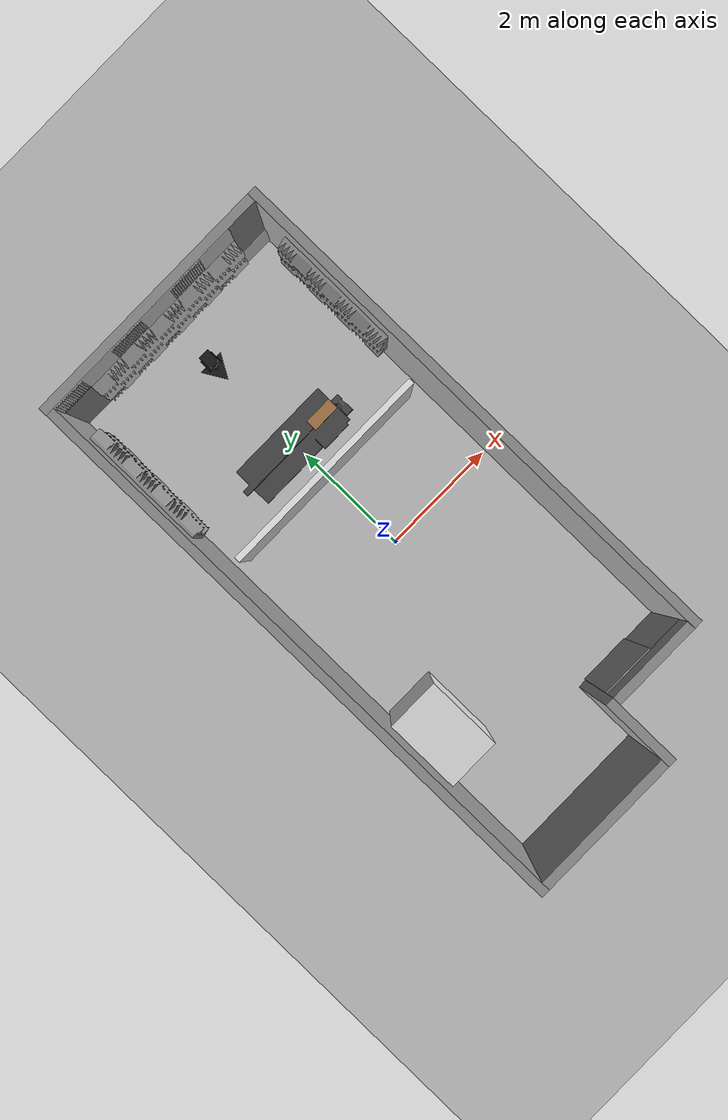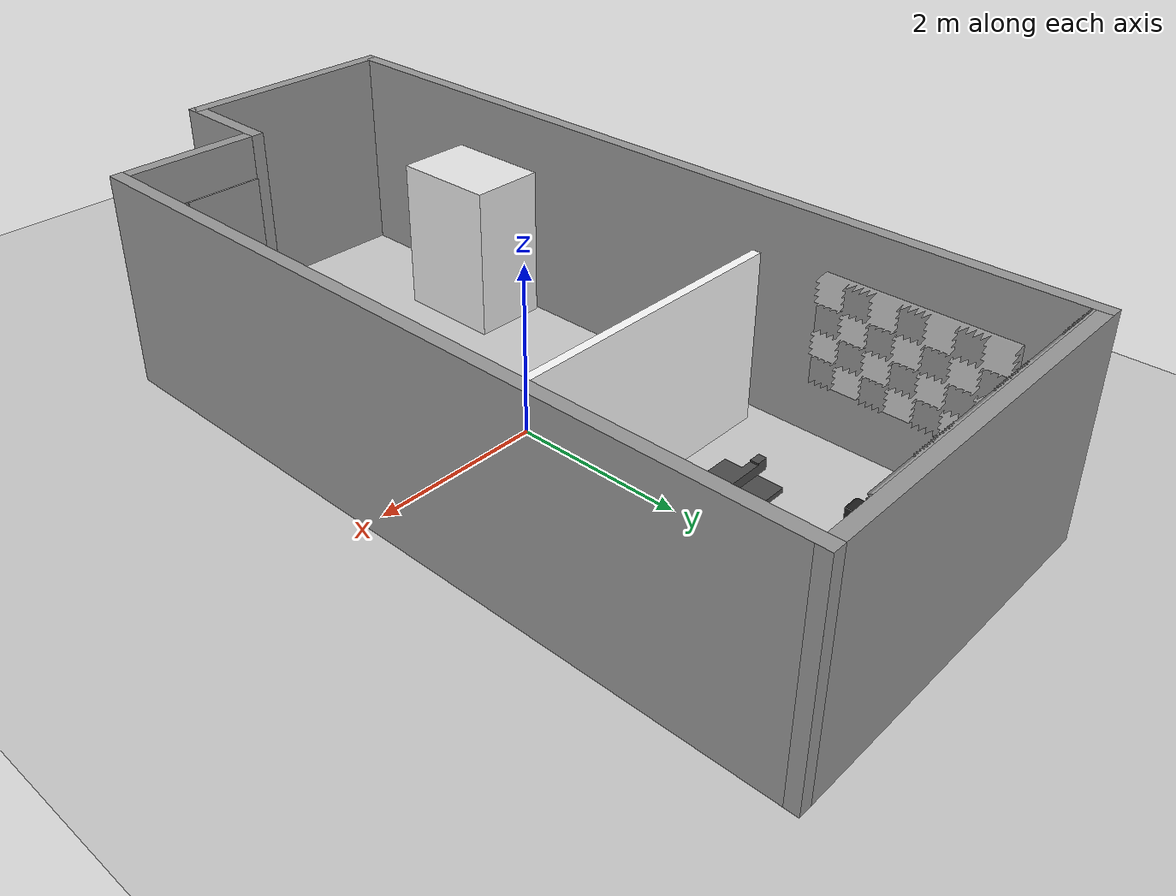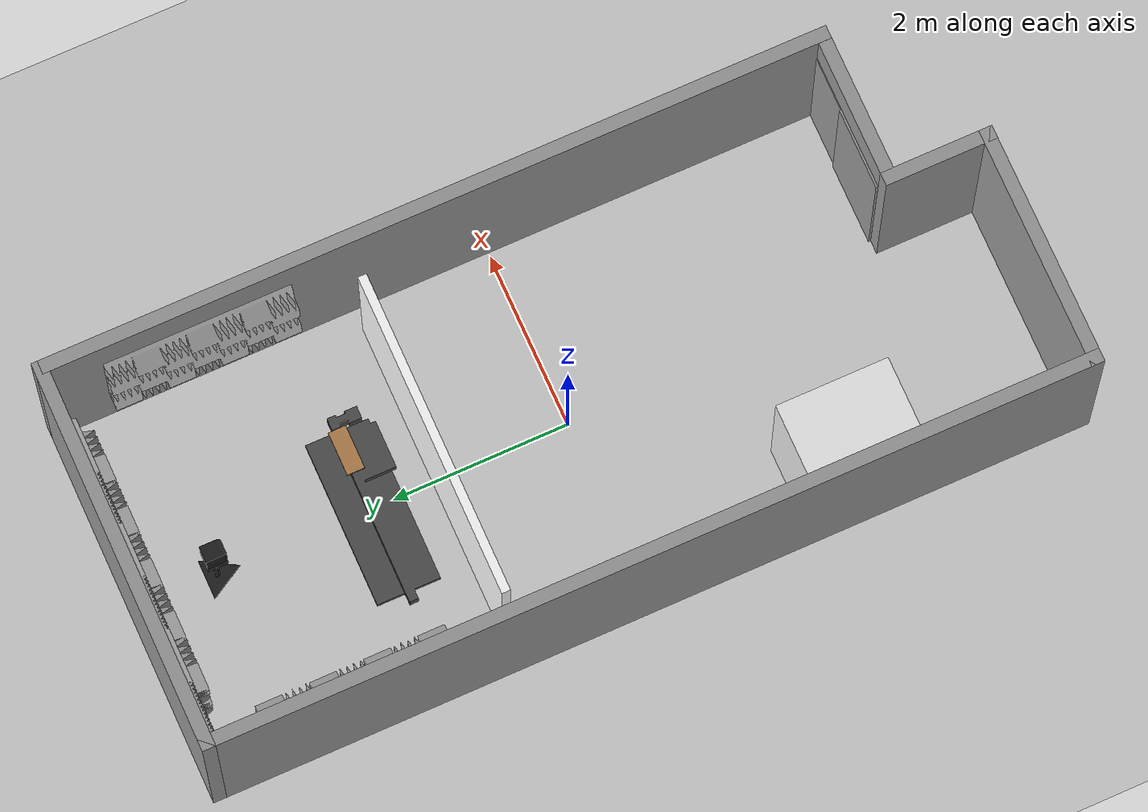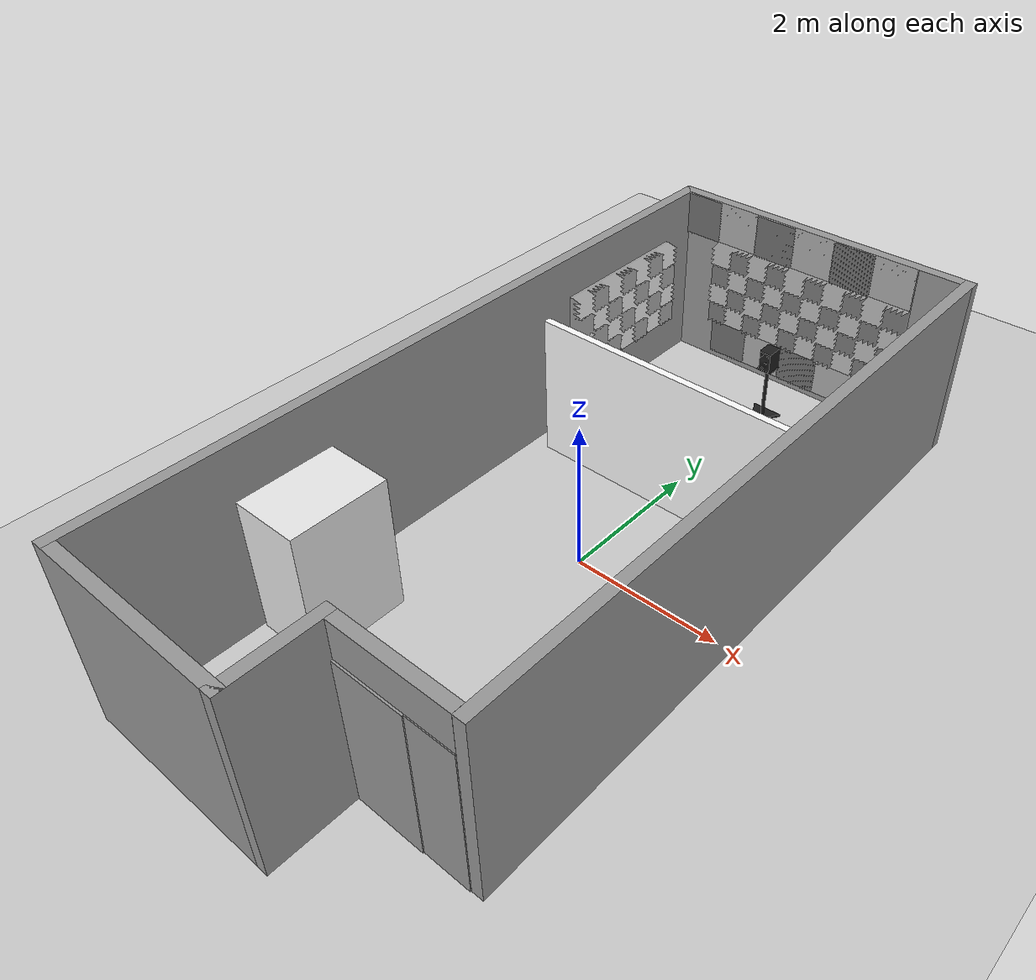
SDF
<sdf version="1.7">
 <world name="default">
  <light name="sun" type="directional">
   <pose>0 0 10 0 -0 0</pose>
   <diffuse>0.8 0.8 0.8 1</diffuse>
   <specular>0.2 0.2 0.2 1</specular>
   <attenuation>
    <range>1000</range>
    <constant>0.9</constant>
    <linear>0.01</linear>
    <quadratic>0.001</quadratic>
   </attenuation>
   <direction>-0.5 0.1 -0.9</direction>
   <spot><inner_angle>0</inner_angle><outer_angle>0</outer_angle><falloff>0</falloff></spot>
  </light>
  <model name="ground_plane">
   <static>1</static>
   <link name="link">
    <collision name="collision">
     <geometry><plane><normal>0 0 1</normal><size>100 100</size></plane></geometry>
     <surface><friction><ode><mu>100</mu><mu2>50</mu2></ode></friction></surface>
    </collision>
    <visual name="visual">
     <cast_shadows>0</cast_shadows>
     <geometry><plane><normal>0 0 1</normal><size>100 100</size></plane></geometry>
     <material>
      <script><uri>file://media/materials/scripts/gazebo.material</uri><name>Gazebo/Grey</name></script>
     </material>
    </visual>
   </link>
  </model>
  <gravity>0 0 -9.8</gravity>
  <magnetic_field>6e-06 2.3e-05 -4.2e-05</magnetic_field>
  <atmosphere type="adiabatic"/>
  <physics type="ode">
   <max_step_size>0.001</max_step_size>
   <real_time_factor>1</real_time_factor>
   <real_time_update_rate>1000</real_time_update_rate>
  </physics>
  <scene><ambient>0.4 0.4 0.4 1</ambient><background>0.7 0.7 0.7 1</background><shadows>1</shadows></scene>
  <spherical_coordinates>
   <surface_model>EARTH_WGS84</surface_model>
   <latitude_deg>0</latitude_deg>
   <longitude_deg>0</longitude_deg>
   <elevation>0</elevation>
   <heading_deg>0</heading_deg>
  </spherical_coordinates>
  <model name="B10">
   <link name="Door_0">
    <collision name="Door_0_Collision">
     <geometry><box><size>0.91 0.2 2</size></box></geometry>
     <pose>0 0 1 0 -0 0</pose>
    </collision>
    <visual name="Door_0_Visual">
     <pose>0 0 1 0 -0 0</pose>
     <geometry><box><size>0.91 0.2 2</size></box></geometry>
     <material>
      <script><uri>file://media/materials/scripts/gazebo.material</uri><name>Gazebo/Grey</name></script>
     </material>
    </visual>
    <pose>0.9935 -3.814 0 0 -0 0</pose>
   </link>
   <link name="Door_2">
    <collision name="Door_2_Collision">
     <geometry><box><size>0.61 0.17 2</size></box></geometry>
     <pose>0 0 1 0 -0 0</pose>
    </collision>
    <visual name="Door_2_Visual">
     <pose>0 0 1 0 -0 0</pose>
     <geometry><box><size>0.61 0.17 2</size></box></geometry>
     <material>
      <script><uri>file://media/materials/scripts/gazebo.material</uri><name>Gazebo/Grey</name></script>
     </material>
    </visual>
    <pose>1.7515 -3.816 0 0 -0 0</pose>
   </link>
   <link name="Wall_10">
    <collision name="Wall_10_Collision">
     <geometry><box><size>1.26001 0.15 2.5</size></box></geometry>
     <pose>0 0 1.25 0 -0 0</pose>
    </collision>
    <visual name="Wall_10_Visual">
     <pose>0 0 1.25 0 -0 0</pose>
     <geometry><box><size>1.26001 0.15 2.5</size></box></geometry>
     <material>
      <script><uri>file://media/materials/scripts/gazebo.material</uri><name>Gazebo/Grey</name></script>
      <ambient>1 1 1 1</ambient>
     </material>
     <meta><layer>0</layer></meta>
    </visual>
    <pose>0.4615 -4.369 0 0 -0 1.5708</pose>
   </link>
   <link name="Wall_5">
    <collision name="Wall_5_Collision">
     <geometry><box><size>8.888 0.15 2.5</size></box></geometry>
     <pose>0 0 1.25 0 -0 0</pose>
    </collision>
    <visual name="Wall_5_Visual">
     <pose>0 0 1.25 0 -0 0</pose>
     <geometry><box><size>8.888 0.15 2.5</size></box></geometry>
     <material>
      <script><uri>file://media/materials/scripts/gazebo.material</uri><name>Gazebo/Grey</name></script>
      <ambient>1 1 1 1</ambient>
     </material>
     <meta><layer>0</layer></meta>
    </visual>
    <pose>2.1335 0.555002 0 0 -0 1.5708</pose>
   </link>
   <link name="Wall_7">
    <collision name="Wall_7_Collision">
     <geometry><box><size>4.417 0.15 2.5</size></box></geometry>
     <pose>0 0 1.25 0 -0 0</pose>
    </collision>
    <visual name="Wall_7_Visual">
     <pose>0 0 1.25 0 -0 0</pose>
     <geometry><box><size>4.417 0.15 2.5</size></box></geometry>
     <material>
      <script><uri>file://media/materials/scripts/gazebo.material</uri><name>Gazebo/Grey</name></script>
      <ambient>1 1 1 1</ambient>
     </material>
     <meta><layer>0</layer></meta>
    </visual>
    <pose>0 4.924 0 0 -0 3.14159</pose>
   </link>
   <link name="Wall_8">
    <collision name="Wall_8_Collision">
     <geometry><box><size>9.998 0.15 2.5</size></box></geometry>
     <pose>0 0 1.25 0 -0 0</pose>
    </collision>
    <visual name="Wall_8_Visual">
     <pose>0 0 1.25 0 -0 0</pose>
     <geometry><box><size>9.998 0.15 2.5</size></box></geometry>
     <material>
      <script><uri>file://media/materials/scripts/gazebo.material</uri><name>Gazebo/Grey</name></script>
      <ambient>1 1 1 1</ambient>
     </material>
     <meta><layer>0</layer></meta>
    </visual>
    <pose>-2.1335 2e-06 0 0 -0 -1.5708</pose>
   </link>
   <link name="Wall_9">
    <collision name="Wall_9_Collision">
     <geometry><box><size>2.745 0.15 2.5</size></box></geometry>
     <pose>0 0 1.25 0 -0 0</pose>
    </collision>
    <visual name="Wall_9_Visual">
     <pose>0 0 1.25 0 -0 0</pose>
     <geometry><box><size>2.745 0.15 2.5</size></box></geometry>
     <material>
      <script><uri>file://media/materials/scripts/gazebo.material</uri><name>Gazebo/Grey</name></script>
      <ambient>1 1 1 1</ambient>
     </material>
     <meta><layer>0</layer></meta>
    </visual>
    <pose>-0.836 -4.924 0 0 -0 0</pose>
   </link>
   <link name="Wall_11">
    <collision name="Wall_11_Collision">
     <geometry><box><size>1.524 0.15 2.5</size></box></geometry>
     <pose>0 0 1.25 0 -0 0</pose>
    </collision>
    <visual name="Wall_11_Visual">
     <pose>0 0 1.25 0 -0 0</pose>
     <geometry><box><size>1.524 0.15 2.5</size></box></geometry>
     <material>
      <script><uri>file://media/materials/scripts/gazebo.material</uri><name>Gazebo/Grey</name></script>
      <ambient>1 1 1 1</ambient>
     </material>
     <meta><layer>0</layer></meta>
    </visual>
    <pose>1.295 -3.814 0 0 -0 0</pose>
   </link>
   <static>1</static>
  </model>
  <model name="Curtain">
   <link name="link">
    <collision name="Curtain_Collision">
     <geometry><box><size>3.658 0.1 2</size></box></geometry>
     <pose>0 0 1 0 -0 0</pose>
    </collision>
    <visual name="Curtain_Visual">
     <pose>0 0 1 0 -0 0</pose>
     <geometry><box><size>3.658 0.1 2</size></box></geometry>
     <material>
      <script><uri>file://media/materials/scripts/gazebo.material</uri><name>Gazebo/CoM</name></script>
      <ambient>1 1 1 1</ambient>
     </material>
     <meta><layer>0</layer></meta>
    </visual>
   </link>
   <static>1</static>
   <pose>0 1.5 0 0 -0 0</pose>
  </model>
  <model name="HVAC">
   <link name="link">
    <collision name="HVAC_Collision">
     <geometry><box><size>1.27 0.9 1.83</size></box></geometry>
     <pose>0 0 0.915 0 -0 0</pose>
    </collision>
    <visual name="HVAC_Visual">
     <pose>0 0 0.915 0 -0 0</pose>
     <geometry><box><size>1.27 0.9 1.83</size></box></geometry>
     <material>
      <script><uri>file://media/materials/scripts/gazebo.material</uri><name>Gazebo/White</name></script>
      <ambient>1 1 1 1</ambient>
     </material>
     <meta><layer>0</layer></meta>
    </visual>
   </link>
   <static>1</static>
   <pose>-1.57 -2.465 0 0 -0 1.571</pose>
  </model>
  <model name="foam4x10">
   <link name="link">
    <visual name="visual">
     <geometry>
      <mesh><uri>model://foam4x10/meshes/foam4x10.stl</uri><scale>0.001 0.001 0.001</scale></mesh>
     </geometry>
     <material>
      <script><uri>file://media/materials/scripts/gazebo.material</uri><name>Gazebo/Grey</name></script>
      <ambient>1 1 1 1</ambient>
     </material>
    </visual>
    <collision name="collision">
     <geometry>
      <mesh><uri>model://foam4x10/meshes/foam4x10.stl</uri><scale>0.001 0.001 0.001</scale></mesh>
     </geometry>
    </collision>
   </link>
   <static>1</static>
   <pose>1.2 4.85 1 -3.14149 -1.57059 -1.57069</pose>
  </model>
  <model name="thinfoam1x6">
   <link name="link">
    <visual name="visual">
     <geometry>
      <mesh><uri>model://thinfoam1x6/meshes/thinfoam1x6.stl</uri><scale>0.001 0.001 0.001</scale></mesh>
     </geometry>
     <material>
      <script><uri>file://media/materials/scripts/gazebo.material</uri><name>Gazebo/Grey</name></script>
      <ambient>1 1 1 1</ambient>
     </material>
    </visual>
    <collision name="collision">
     <geometry>
      <mesh><uri>model://thinfoam1x6/meshes/thinfoam1x6.stl</uri><scale>0.001 0.001 0.001</scale></mesh>
     </geometry>
    </collision>
   </link>
   <static>1</static>
   <pose>-1.5 4.85 0.1 1.571 -0 0</pose>
  </model>
  <model name="thinfoam1x6_0">
   <link name="link">
    <visual name="visual">
     <geometry>
      <mesh><uri>model://thinfoam1x6/meshes/thinfoam1x6.stl</uri><scale>0.001 0.001 0.001</scale></mesh>
     </geometry>
     <material>
      <script><uri>file://media/materials/scripts/gazebo.material</uri><name>Gazebo/Grey</name></script>
      <ambient>1 1 1 1</ambient>
     </material>
    </visual>
    <collision name="collision">
     <geometry>
      <mesh><uri>model://thinfoam1x6/meshes/thinfoam1x6.stl</uri><scale>0.001 0.001 0.001</scale></mesh>
     </geometry>
    </collision>
   </link>
   <static>1</static>
   <pose>-2.1 4.85 1.9 1.571 -0 0</pose>
  </model>
  <model name="foam4x7">
   <link name="link">
    <visual name="visual">
     <geometry>
      <mesh><uri>model://foam4x7/meshes/foam4x7.stl</uri><scale>0.001 0.001 0.001</scale></mesh>
     </geometry>
     <material>
      <script><uri>file://media/materials/scripts/gazebo.material</uri><name>Gazebo/Grey</name></script>
      <ambient>1 1 1 1</ambient>
     </material>
    </visual>
    <collision name="collision">
     <geometry>
      <mesh><uri>model://foam4x7/meshes/foam4x7.stl</uri><scale>0.001 0.001 0.001</scale></mesh>
     </geometry>
    </collision>
   </link>
   <static>1</static>
   <pose>-2.06 2.5 1.63 3.14159 1.57059 3.14159</pose>
  </model>
  <model name="foam4x7_0">
   <link name="link">
    <visual name="visual">
     <geometry>
      <mesh><uri>model://foam4x7/meshes/foam4x7.stl</uri><scale>0.001 0.001 0.001</scale></mesh>
     </geometry>
     <material>
      <script><uri>file://media/materials/scripts/gazebo.material</uri><name>Gazebo/Grey</name></script>
      <ambient>1 1 1 1</ambient>
     </material>
    </visual>
    <collision name="collision">
     <geometry>
      <mesh><uri>model://foam4x7/meshes/foam4x7.stl</uri><scale>0.001 0.001 0.001</scale></mesh>
     </geometry>
    </collision>
   </link>
   <static>1</static>
   <pose>2.06 2.5 1.03 -3.14159 -1.57059 -3.14159</pose>
  </model>
  <model name="stand">
   <link name="head">
    <visual name="visual">
     <geometry><mesh><uri>model://stand/meshes/head.stl</uri><scale>0.001 0.001 0.001</scale></mesh></geometry>
     <material>
      <script><uri>file://media/materials/scripts/gazebo.material</uri><name>Gazebo/Black</name></script>
      <ambient>1 1 1 1</ambient>
     </material>
    </visual>
    <collision name="collision">
     <geometry><mesh><uri>model://stand/meshes/head.stl</uri><scale>0.001 0.001 0.001</scale></mesh></geometry>
    </collision>
    <pose>0 0 0.8 0 -0 0</pose>
   </link>
   <link name="base">
    <visual name="visual">
     <geometry><mesh><uri>model://stand/meshes/base.stl</uri><scale>0.001 0.001 0.001</scale></mesh></geometry>
     <material>
      <script><uri>file://media/materials/scripts/gazebo.material</uri><name>Gazebo/Black</name></script>
      <ambient>1 1 1 1</ambient>
     </material>
    </visual>
    <collision name="collision">
     <geometry><mesh><uri>model://stand/meshes/base.stl</uri><scale>0.001 0.001 0.001</scale></mesh></geometry>
    </collision>
   </link>
   <static>1</static>
   <pose>0 4 0 0 -0 0</pose>
  </model>
  <model name="jbl5">
   <pose>0 4 0.8 0 -0 0</pose>
   <link name="link">
    <visual name="visual">
     <geometry><mesh><uri>model://jbl5/meshes/jbl5in.stl</uri><scale>0.001 0.001 0.001</scale></mesh></geometry>
     <material>
      <script><uri>file://media/materials/scripts/gazebo.material</uri><name>Gazebo/Black</name></script>
      <ambient>1 1 1 1</ambient>
     </material>
    </visual>
    <collision name="collision">
     <geometry><mesh><uri>model://jbl5/meshes/jbl5.stl</uri><scale>0.001 0.001 0.001</scale></mesh></geometry>
    </collision>
   </link>
   <static>1</static>
  </model>
  <model name="rail">
   <link name="head">
    <visual name="visual">
     <geometry><mesh><uri>model://rail/meshes/head.stl</uri><scale>0.001 0.001 0.001</scale></mesh></geometry>
     <material>
      <script><uri>file://media/materials/scripts/gazebo.material</uri><name>Gazebo/Wood</name></script>
      <ambient>1 1 1 1</ambient>
     </material>
    </visual>
    <collision name="collision">
     <geometry><mesh><uri>model://rail/meshes/head.stl</uri><scale>0.001 0.001 0.001</scale></mesh></geometry>
    </collision>
    <pose>0 0 0.06 0 -0 0</pose>
   </link>
   <link name="base">
    <visual name="visual">
     <geometry><mesh><uri>model://rail/meshes/base.stl</uri><scale>0.001 0.001 0.001</scale></mesh></geometry>
     <material>
      <script><uri>file://media/materials/scripts/gazebo.material</uri><name>Gazebo/DarkGrey</name></script>
      <ambient>1 1 1 1</ambient>
     </material>
    </visual>
    <collision name="collision">
     <geometry><mesh><uri>model://rail/meshes/base.stl</uri><scale>0.001 0.001 0.001</scale></mesh></geometry>
    </collision>
    <pose>0 0 0.06 0 -0 0</pose>
   </link>
   <static>1</static>
   <pose>0.9 2.2 0 0 -0 1.571</pose>
  </model>
 </world>
</sdf>
